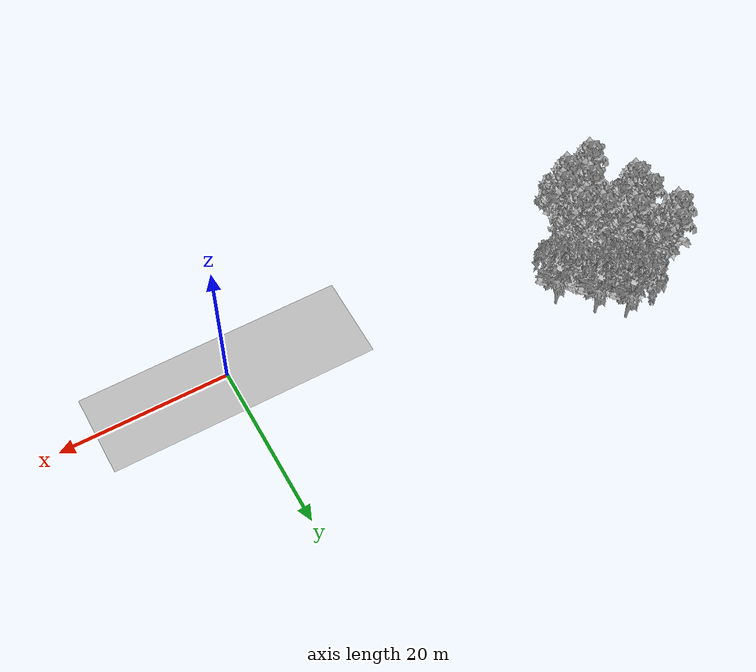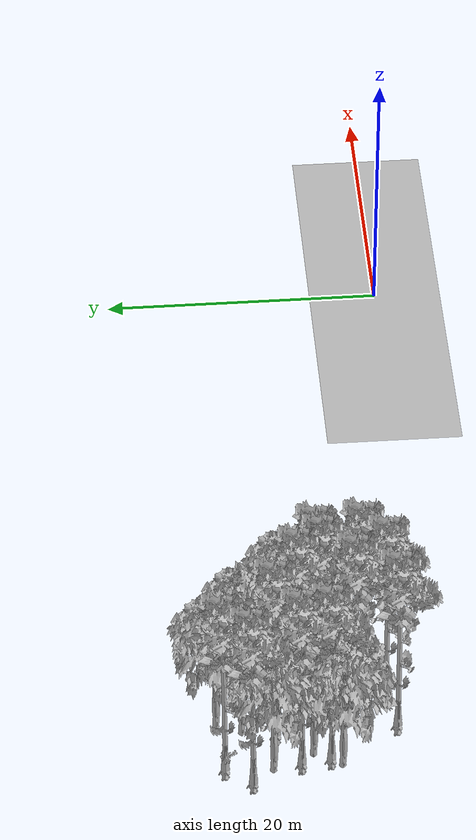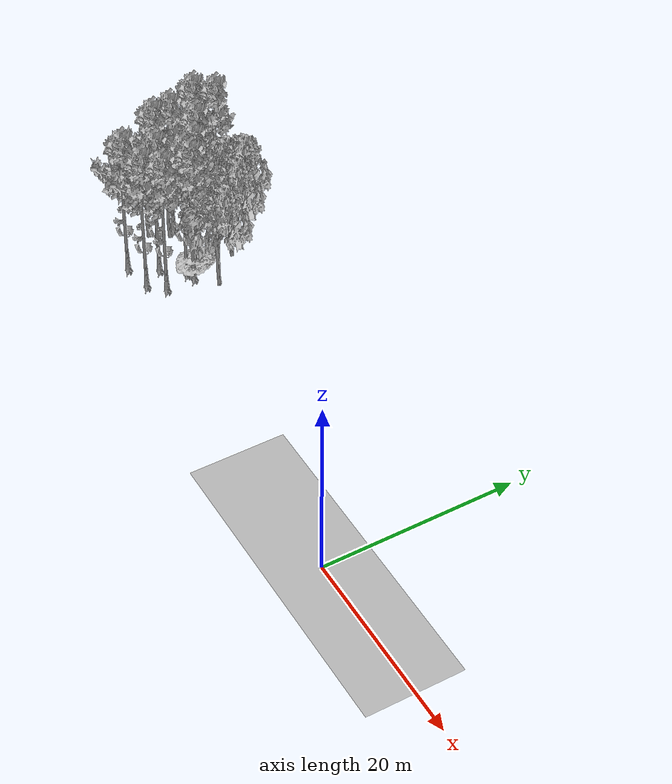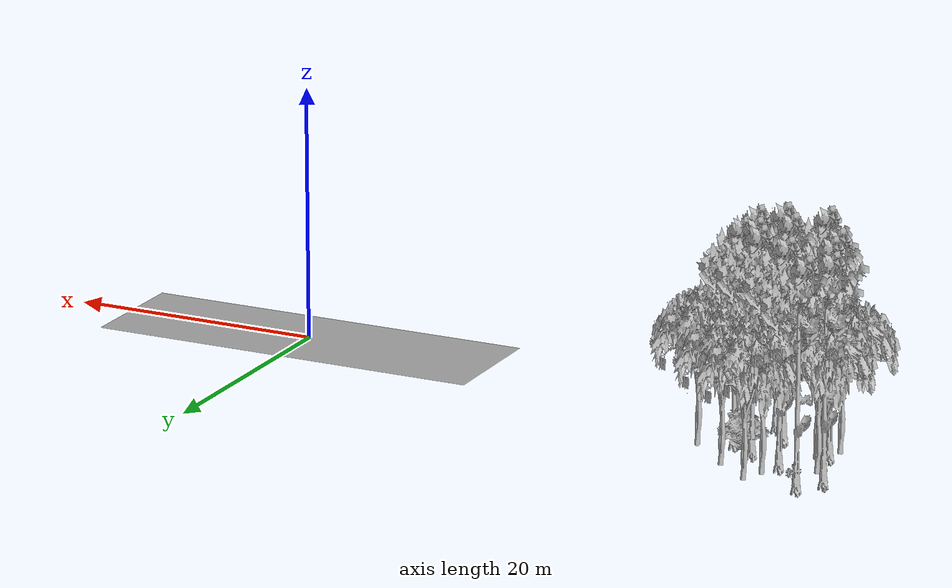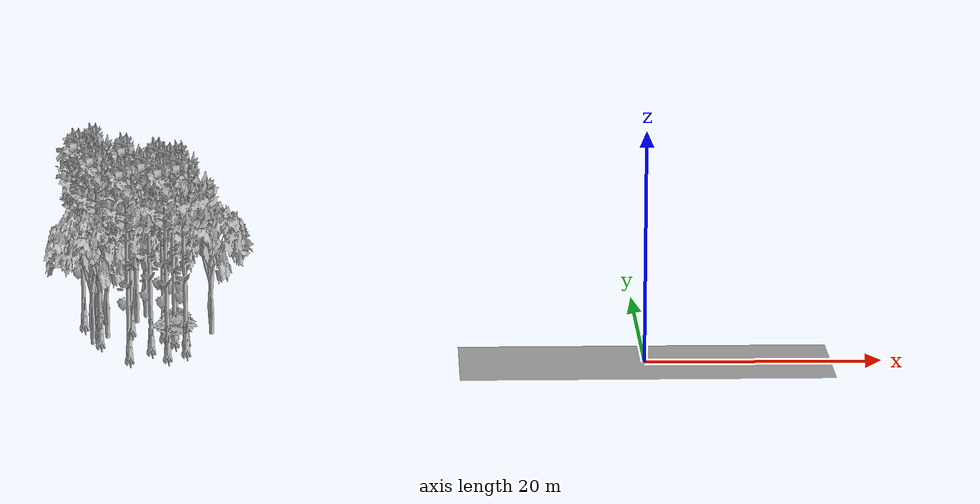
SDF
<sdf version="1.7">
 <world name="default">
  <model name="ground_plane">
   <static>1</static>
   <link name="link">
    <collision name="collision">
     <pose>-50 0 0 0 -0 0</pose>
     <geometry><plane><normal>0 0 1</normal><size>100 100</size></plane></geometry>
     <surface><contact><ode><min_depth>0.01</min_depth><max_vel>0</max_vel></ode></contact></surface>
    </collision>
    <visual name="grass">
     <cast_shadows>0</cast_shadows>
     <geometry>
      <mesh>
       <scale>0.5814285714285714 0.18142857142857144 0.1</scale>
       <uri>file://grass_plane/meshes/grass_plane.dae</uri>
      </mesh>
     </geometry>
    </visual>
   </link>
  </model>
  <model name="Tree 0">
   <static>1</static>
   <pose>-48.097148536025074 12.700255698125272 0 1.57079 -0 0</pose>
   <link name="link">
    <collision name="collision">
     <geometry><mesh><scale>3.5 5 3.5</scale><uri>model://tree_9/meshes/tree_9.obj</uri></mesh></geometry>
    </collision>
    <visual name="visual">
     <geometry><mesh><scale>3.5 5 3.5</scale><uri>model://tree_9/meshes/tree_9.obj</uri></mesh></geometry>
    </visual>
   </link>
  </model>
  <model name="Tree 44">
   <static>1</static>
   <pose>-46.63286699414616 9.332302884529991 0 1.57079 -0 0</pose>
   <link name="link">
    <collision name="collision">
     <geometry><mesh><scale>3.5 5 3.5</scale><uri>model://tree_9/meshes/tree_9.obj</uri></mesh></geometry>
    </collision>
    <visual name="visual">
     <geometry><mesh><scale>3.5 5 3.5</scale><uri>model://tree_9/meshes/tree_9.obj</uri></mesh></geometry>
    </visual>
   </link>
  </model>
  <model name="Tree 67">
   <static>1</static>
   <pose>-45.88844195989965 8.469147184531653 0 1.57079 -0 0</pose>
   <link name="link">
    <collision name="collision">
     <geometry><mesh><scale>3.5 5 3.5</scale><uri>model://tree_2/meshes/tree_2.obj</uri></mesh></geometry>
    </collision>
    <visual name="visual">
     <geometry><mesh><scale>3.5 5 3.5</scale><uri>model://tree_2/meshes/tree_2.obj</uri></mesh></geometry>
    </visual>
   </link>
  </model>
  <model name="Tree 116">
   <static>1</static>
   <pose>-39.004777324567826 7.7289829994249715 0 1.57079 -0 0</pose>
   <link name="link">
    <collision name="collision">
     <geometry><mesh><scale>3.5 5 3.5</scale><uri>model://tree_9/meshes/tree_9.obj</uri></mesh></geometry>
    </collision>
    <visual name="visual">
     <geometry><mesh><scale>3.5 5 3.5</scale><uri>model://tree_9/meshes/tree_9.obj</uri></mesh></geometry>
    </visual>
   </link>
  </model>
  <model name="Tree 125">
   <static>1</static>
   <pose>-40.989806619429935 9.0756822606414 0 1.57079 -0 0</pose>
   <link name="link">
    <collision name="collision">
     <geometry><mesh><scale>3.5 5 3.5</scale><uri>model://tree_9/meshes/tree_9.obj</uri></mesh></geometry>
    </collision>
    <visual name="visual">
     <geometry><mesh><scale>3.5 5 3.5</scale><uri>model://tree_9/meshes/tree_9.obj</uri></mesh></geometry>
    </visual>
   </link>
  </model>
  <model name="Tree 135">
   <static>1</static>
   <pose>-47.12426702593822 11.242016140109282 0 1.57079 -0 0</pose>
   <link name="link">
    <collision name="collision">
     <geometry><mesh><scale>3.5 5 3.5</scale><uri>model://tree_2/meshes/tree_2.obj</uri></mesh></geometry>
    </collision>
    <visual name="visual">
     <geometry><mesh><scale>3.5 5 3.5</scale><uri>model://tree_2/meshes/tree_2.obj</uri></mesh></geometry>
    </visual>
   </link>
  </model>
  <model name="Tree 147">
   <static>1</static>
   <pose>-46.338516563782534 7.323959149512376 0 1.57079 -0 0</pose>
   <link name="link">
    <collision name="collision">
     <geometry><mesh><scale>3.5 5 3.5</scale><uri>model://tree_9/meshes/tree_9.obj</uri></mesh></geometry>
    </collision>
    <visual name="visual">
     <geometry><mesh><scale>3.5 5 3.5</scale><uri>model://tree_9/meshes/tree_9.obj</uri></mesh></geometry>
    </visual>
   </link>
  </model>
  <model name="Tree 149">
   <static>1</static>
   <pose>-43.61415988946425 13.135393812610282 0 1.57079 -0 0</pose>
   <link name="link">
    <collision name="collision">
     <geometry><mesh><scale>3.5 5 3.5</scale><uri>model://tree_2/meshes/tree_2.obj</uri></mesh></geometry>
    </collision>
    <visual name="visual">
     <geometry><mesh><scale>3.5 5 3.5</scale><uri>model://tree_2/meshes/tree_2.obj</uri></mesh></geometry>
    </visual>
   </link>
  </model>
  <model name="Tree 193">
   <static>1</static>
   <pose>-38.87493417174828 4.6047264938517145 0 1.57079 -0 0</pose>
   <link name="link">
    <collision name="collision">
     <geometry><mesh><scale>3.5 5 3.5</scale><uri>model://tree_9/meshes/tree_9.obj</uri></mesh></geometry>
    </collision>
    <visual name="visual">
     <geometry><mesh><scale>3.5 5 3.5</scale><uri>model://tree_9/meshes/tree_9.obj</uri></mesh></geometry>
    </visual>
   </link>
  </model>
  <model name="Tree 216">
   <static>1</static>
   <pose>-36.97546867251166 9.466110217556466 0 1.57079 -0 0</pose>
   <link name="link">
    <collision name="collision">
     <geometry><mesh><scale>3.5 5 3.5</scale><uri>model://tree_2/meshes/tree_2.obj</uri></mesh></geometry>
    </collision>
    <visual name="visual">
     <geometry><mesh><scale>3.5 5 3.5</scale><uri>model://tree_2/meshes/tree_2.obj</uri></mesh></geometry>
    </visual>
   </link>
  </model>
  <model name="Tree 227">
   <static>1</static>
   <pose>-40.21334687682652 12.62536794725002 0 1.57079 -0 0</pose>
   <link name="link">
    <collision name="collision">
     <geometry><mesh><scale>3.5 5 3.5</scale><uri>model://tree_2/meshes/tree_2.obj</uri></mesh></geometry>
    </collision>
    <visual name="visual">
     <geometry><mesh><scale>3.5 5 3.5</scale><uri>model://tree_2/meshes/tree_2.obj</uri></mesh></geometry>
    </visual>
   </link>
  </model>
  <model name="Tree 229">
   <static>1</static>
   <pose>-39.971542868540936 7.41047399905791 0 1.57079 -0 0</pose>
   <link name="link">
    <collision name="collision">
     <geometry><mesh><scale>3.5 5 3.5</scale><uri>model://tree_9/meshes/tree_9.obj</uri></mesh></geometry>
    </collision>
    <visual name="visual">
     <geometry><mesh><scale>3.5 5 3.5</scale><uri>model://tree_9/meshes/tree_9.obj</uri></mesh></geometry>
    </visual>
   </link>
  </model>
  <model name="Tree 236">
   <static>1</static>
   <pose>-43.58685320546406 2.5955795733906655 0 1.57079 -0 0</pose>
   <link name="link">
    <collision name="collision">
     <geometry><mesh><scale>3.5 5 3.5</scale><uri>model://tree_9/meshes/tree_9.obj</uri></mesh></geometry>
    </collision>
    <visual name="visual">
     <geometry><mesh><scale>3.5 5 3.5</scale><uri>model://tree_9/meshes/tree_9.obj</uri></mesh></geometry>
    </visual>
   </link>
  </model>
  <model name="Tree 252">
   <static>1</static>
   <pose>-40.26602120975514 8.681708316187141 0 1.57079 -0 0</pose>
   <link name="link">
    <collision name="collision">
     <geometry><mesh><scale>4 2.5 4</scale><uri>model://tree_1/meshes/tree_1.obj</uri></mesh></geometry>
    </collision>
    <visual name="visual">
     <geometry><mesh><scale>4 2.5 4</scale><uri>model://tree_1/meshes/tree_1.obj</uri></mesh></geometry>
    </visual>
   </link>
  </model>
  <model name="Tree 255">
   <static>1</static>
   <pose>-47.01019035477594 6.597599557968618 0 1.57079 -0 0</pose>
   <link name="link">
    <collision name="collision">
     <geometry><mesh><scale>3.5 5 3.5</scale><uri>model://tree_2/meshes/tree_2.obj</uri></mesh></geometry>
    </collision>
    <visual name="visual">
     <geometry><mesh><scale>3.5 5 3.5</scale><uri>model://tree_2/meshes/tree_2.obj</uri></mesh></geometry>
    </visual>
   </link>
  </model>
  <model name="Tree 283">
   <static>1</static>
   <pose>-43.863501160829586 10.83129635035025 0 1.57079 -0 0</pose>
   <link name="link">
    <collision name="collision">
     <geometry><mesh><scale>3.5 5 3.5</scale><uri>model://tree_9/meshes/tree_9.obj</uri></mesh></geometry>
    </collision>
    <visual name="visual">
     <geometry><mesh><scale>3.5 5 3.5</scale><uri>model://tree_9/meshes/tree_9.obj</uri></mesh></geometry>
    </visual>
   </link>
  </model>
  <model name="Tree 316">
   <static>1</static>
   <pose>-40.36574390501542 3.089903038414967 0 1.57079 -0 0</pose>
   <link name="link">
    <collision name="collision">
     <geometry><mesh><scale>3.5 5 3.5</scale><uri>model://tree_9/meshes/tree_9.obj</uri></mesh></geometry>
    </collision>
    <visual name="visual">
     <geometry><mesh><scale>3.5 5 3.5</scale><uri>model://tree_9/meshes/tree_9.obj</uri></mesh></geometry>
    </visual>
   </link>
  </model>
  <model name="Tree 364">
   <static>1</static>
   <pose>-40.049922874360256 8.403064271851502 0 1.57079 -0 0</pose>
   <link name="link">
    <collision name="collision">
     <geometry><mesh><scale>4 2.5 4</scale><uri>model://tree_1/meshes/tree_1.obj</uri></mesh></geometry>
    </collision>
    <visual name="visual">
     <geometry><mesh><scale>4 2.5 4</scale><uri>model://tree_1/meshes/tree_1.obj</uri></mesh></geometry>
    </visual>
   </link>
  </model>
  <model name="Tree 384">
   <static>1</static>
   <pose>-46.75459523967336 14.488707225427447 0 1.57079 -0 0</pose>
   <link name="link">
    <collision name="collision">
     <geometry><mesh><scale>3.5 5 3.5</scale><uri>model://tree_9/meshes/tree_9.obj</uri></mesh></geometry>
    </collision>
    <visual name="visual">
     <geometry><mesh><scale>3.5 5 3.5</scale><uri>model://tree_9/meshes/tree_9.obj</uri></mesh></geometry>
    </visual>
   </link>
  </model>
  <model name="Tree 516">
   <static>1</static>
   <pose>-42.92047652130943 14.833688643784043 0 1.57079 -0 0</pose>
   <link name="link">
    <collision name="collision">
     <geometry><mesh><scale>3.5 5 3.5</scale><uri>model://tree_2/meshes/tree_2.obj</uri></mesh></geometry>
    </collision>
    <visual name="visual">
     <geometry><mesh><scale>3.5 5 3.5</scale><uri>model://tree_2/meshes/tree_2.obj</uri></mesh></geometry>
    </visual>
   </link>
  </model>
  <model name="Tree 525">
   <static>1</static>
   <pose>-41.870089084218584 5.284077464530977 0 1.57079 -0 0</pose>
   <link name="link">
    <collision name="collision">
     <geometry><mesh><scale>3.5 5 3.5</scale><uri>model://tree_9/meshes/tree_9.obj</uri></mesh></geometry>
    </collision>
    <visual name="visual">
     <geometry><mesh><scale>3.5 5 3.5</scale><uri>model://tree_9/meshes/tree_9.obj</uri></mesh></geometry>
    </visual>
   </link>
  </model>
  <model name="Bush 1">
   <static>1</static>
   <pose>-46.449789372955784 14.462342870033218 0 1.57079 -0 0</pose>
   <link name="link">
    <collision name="collision">
     <geometry><mesh><scale>2 2 2</scale><uri>model://bush_5/meshes/bush_5.obj</uri></mesh></geometry>
     <surface><contact><collide_without_contact>false</collide_without_contact></contact></surface>
    </collision>
    <visual name="visual">
     <geometry><mesh><scale>2 2 2</scale><uri>model://bush_5/meshes/bush_5.obj</uri></mesh></geometry>
    </visual>
   </link>
  </model>
 </world>
</sdf>
